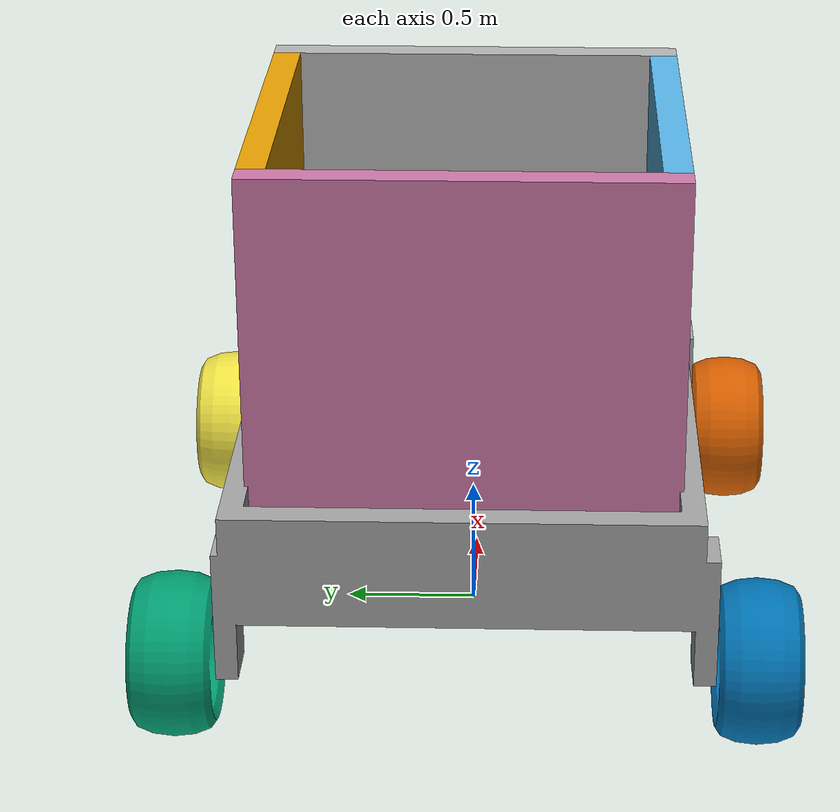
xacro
<?xml version="1.0"?>
<!-- created with Phobos 1.0.1 "Capricious Choutengan" -->
  <robot name="robot" xmlns:xacro="http://wiki.ros.org/xacro">

    <xacro:include filename="$(find robot_description)/urdf/control/ros2_control.urdf.xacro"/>
    <xacro:arg name="config_controllers" default="$(find robot_description)/config/wheels_controller.yaml"/>
    <xacro:arg name="update_rate" default="100"/>
    <xacro:ros2_control/>

    <xacro:include filename="$(find robot_description)/urdf/sensors/sensors.urdf.xacro"/>
    <xacro:arg name="prefix" default=""/>
    <xacro:arg name="my_robot" default=""/>

    <link name="base_footprint">
      <origin xyz="0 0 0" rpy="0 0 0"/>
    </link>

    <link name="base_link">
      <inertial>
        <origin xyz="0 0 0" rpy="0 0 0"/>
        <mass value="150.0"/>
        <inertia ixx="37.11703" ixy="10.21381" ixz="0" iyy="63.78499" iyz="0" izz="72.02697"/>
      </inertial>
      <visual name="Cube.000.000">
        <origin xyz="0 0 0" rpy="1.5708 0 0"/>
        <geometry>
          <mesh filename="file://$(find robot_description)/meshes/dae/Cube.025.dae" scale="1.0 1.0 0.81818"/>
        </geometry>
        <material name="Material"/>
      </visual>
      <collision name="Cube.000.000.000">
        <origin xyz="0 0 0" rpy="1.5708 0 0"/>
        <geometry>
          <mesh filename="file://$(find robot_description)/meshes/dae/Cube.027.dae" scale="1.0 1.0 0.81818"/>
        </geometry>
      </collision>
    </link>

    <link name="back_left_wheel">
      <inertial>
        <origin xyz="0 0 0" rpy="0 0 0"/>
        <mass value="2.0"/>
        <inertia ixx="0.01936" ixy="0" ixz="0" iyy="0.03745" iyz="0" izz="0.7564"/>
      </inertial>
      <visual name="Torus.000">
        <origin xyz="0 0 0" rpy="-3.14159 0 0"/>
        <geometry>
          <mesh filename="file://$(find robot_description)/meshes/dae/Torus.004.dae" scale="0.24 0.24 0.6"/>
        </geometry>
      </visual>
      <collision name="Torus.000.000">
        <origin xyz="0 0 0" rpy="-3.14159 0 0"/>
        <geometry>
          <mesh filename="file://$(find robot_description)/meshes/dae/Torus.005.dae" scale="0.6 0.6 0.6"/>
        </geometry>
      </collision>
    </link>

    <link name="front_left_wheel">
      <inertial>
        <origin xyz="0 0 0" rpy="0 0 0"/>
        <mass value="2.0"/>
        <inertia ixx="0.01936" ixy="0" ixz="0" iyy="0.03745" iyz="0" izz="0.7564"/>
      </inertial>
      <visual name="Torus.003">
        <origin xyz="0 0 0" rpy="0 0 0"/>
        <geometry>
          <mesh filename="file://$(find robot_description)/meshes/dae/Torus.003.dae" scale="0.24 0.24 0.6"/>
        </geometry>
      </visual>
      <collision name="Torus.003.000">
        <origin xyz="0 0 0" rpy="0 0 0"/>
        <geometry>
          <mesh filename="file://$(find robot_description)/meshes/dae/Torus.006.dae" scale="0.6 0.6 0.6"/>
        </geometry>
      </collision>
    </link>

    <link name="back_right_wheel">
      <inertial>
        <origin xyz="0 0 0" rpy="0 0 0"/>
        <mass value="2.0"/>
        <inertia ixx="0.01936" ixy="0" ixz="0" iyy="0.03745" iyz="0" izz="0.7564"/>
      </inertial>
      <visual name="Torus.001">
        <origin xyz="0 0 0" rpy="-3.14159 0 0"/>
        <geometry>
          <mesh filename="file://$(find robot_description)/meshes/dae/Torus.007.dae" scale="0.24 0.24 0.6"/>
        </geometry>
      </visual>
      <collision name="Torus.001.000">
        <origin xyz="0 0 0" rpy="-3.14159 0 0"/>
        <geometry>
          <mesh filename="file://$(find robot_description)/meshes/dae/Torus.008.dae" scale="0.6 0.6 0.6"/>
        </geometry>
      </collision>
    </link>

    <link name="front_right_wheel">
      <inertial>
        <origin xyz="0 0 0" rpy="0 0 0"/>
        <mass value="2.0"/>
        <inertia ixx="0.14197" ixy="0" ixz="0" iyy="0.23407" iyz="0" izz="0.14197"/>
      </inertial>
      <visual name="Torus.002">
        <origin xyz="0 0 0" rpy="-3.14159 0 0"/>
        <geometry>
          <mesh filename="file://$(find robot_description)/meshes/dae/Torus.002.dae" scale="0.24 0.24 0.6"/>
        </geometry>
      </visual>
      <collision name="Torus.002.000">
        <origin xyz="0 0 0" rpy="-3.14159 0 0"/>
        <geometry>
          <mesh filename="file://$(find robot_description)/meshes/dae/Torus.000.dae" scale="0.6 0.6 0.6"/>
        </geometry>
      </collision>
    </link>

    <link name="zback_box">
      <inertial>
        <origin xyz="0 0 0" rpy="0 0 0"/>
        <mass value="0.001"/>
        <inertia ixx="0.001" ixy="0" ixz="0" iyy="0.001" iyz="0" izz="0.001"/>
      </inertial>
      <visual name="Cube">
        <origin xyz="0 0 0" rpy="0 0 0"/>
        <geometry>
          <box size="0.1 1.5 1.35"/>
        </geometry>
      </visual>
      <collision name="Cube.000">
        <origin xyz="0 0 0" rpy="0 0 0"/>
        <geometry>
          <mesh filename="file://$(find robot_description)/meshes/dae/Cube.033.dae" scale="1.0 1.0 1.0"/>
        </geometry>
      </collision>
    </link>

    <link name="zfront_box">
      <inertial>
        <origin xyz="0 0 0" rpy="0 0 0"/>
        <mass value="0.001"/>
        <inertia ixx="0.001" ixy="0" ixz="0" iyy="0.001" iyz="0" izz="0.001"/>
      </inertial>
      <visual name="Cube.002">
        <origin xyz="0 0 0" rpy="0 0 0"/>
        <geometry>
          <box size="0.1 1.5 1.35"/>
        </geometry>
      </visual>
      <collision name="Cube.002.000">
        <origin xyz="0 0 0" rpy="0 0 0"/>
        <geometry>
          <mesh filename="file://$(find robot_description)/meshes/dae/Cube.034.dae" scale="1.0 1.0 1.0"/>
        </geometry>
      </collision>
    </link>

    <link name="zleft_box">
      <inertial>
        <origin xyz="0 0 0" rpy="0 0 0"/>
        <mass value="0.001"/>
        <inertia ixx="0.001" ixy="0" ixz="0" iyy="0.001" iyz="0" izz="0.001"/>
      </inertial>
      <visual name="Cube.003">
        <origin xyz="0 0 0" rpy="0 0 0"/>
        <geometry>
          <box size="0.1 1.3 1.35"/>
        </geometry>
      </visual>
      <collision name="Cube.003.000">
        <origin xyz="0 0 0" rpy="0 0 0"/>
        <geometry>
          <mesh filename="file://$(find robot_description)/meshes/dae/Cube.032.dae" scale="1.0 1.0 1.0"/>
        </geometry>
      </collision>
    </link>

    <link name="zright_box">
      <inertial>
        <origin xyz="0 0 0" rpy="0 0 0"/>
        <mass value="0.001"/>
        <inertia ixx="0.001" ixy="0" ixz="0" iyy="0.001" iyz="0" izz="0.001"/>
      </inertial>
      <visual name="Cube.004">
        <origin xyz="0 0 0" rpy="0 0 0"/>
        <geometry>
          <box size="0.1 1.3 1.35"/>
        </geometry>
      </visual>
      <collision name="Cube.004.000">
        <origin xyz="0 0 0" rpy="0 0 0"/>
        <geometry>
          <mesh filename="file://$(find robot_description)/meshes/dae/Cube.035.dae" scale="1.0 1.0 1.0"/>
        </geometry>
      </collision>
    </link>

    <joint name="base_joint" type="fixed">
      <origin xyz="0 0 0.8" rpy="0 0 0"/>
      <parent link="base_footprint"/>
      <child link="base_link"/>
    </joint>

    <joint name="zback_box" type="fixed">
      <origin xyz="-1.2 0 0.735" rpy="0 0 0"/>
      <parent link="base_link"/>
      <child link="zback_box"/>
    </joint>

    <joint name="zfront_box" type="fixed">
      <origin xyz="0.2 0 0.735" rpy="0 0 0"/>
      <parent link="base_link"/>
      <child link="zfront_box"/>
    </joint>

    <joint name="zleft_box" type="fixed">
      <origin xyz="-0.5 0.7 0.735" rpy="0 0 1.5708"/>
      <parent link="base_link"/>
      <child link="zleft_box"/>
    </joint>

    <joint name="zright_box" type="fixed">
      <origin xyz="-0.5 -0.7 0.735" rpy="0 0 1.5708"/>
      <parent link="base_link"/>
      <child link="zright_box"/>
    </joint>

    <joint name="back_left_wheel_joint" type="continuous">
      <origin xyz="-1.0 1.05 -0.5" rpy="-1.5708 0 0"/>
      <parent link="base_link"/>
      <child link="back_left_wheel"/>
      <axis xyz="0 0 1.0"/>
      <limit effort="5000" velocity="100"/>
    </joint>

    <joint name="front_left_wheel_joint" type="continuous">
      <origin xyz="1.0 1.05 -0.5" rpy="-1.5708 0 0"/>
      <parent link="base_link"/>
      <child link="front_left_wheel"/>
      <axis xyz="0 0 1.0"/>
      <limit effort="5000" velocity="100"/>
    </joint>

    <!-- RPY modified -->
    <joint name="back_right_wheel_joint" type="continuous">
      <origin xyz="-1.0 -1.05 -0.5" rpy="-1.5708 0 0"/>
      <parent link="base_link"/>
      <child link="back_right_wheel"/>
      <axis xyz="0 0 1.0"/>
      <limit effort="5000" velocity="100"/>
    </joint>

    <joint name="front_right_wheel_joint" type="continuous">
      <origin xyz="1.0 -1.05 -0.5" rpy="-1.5708 0 0"/>
      <parent link="base_link"/>
      <child link="front_right_wheel"/>
      <axis xyz="0 0 1.0"/>
      <limit effort="5000" velocity="100"/>
    </joint>
    <transmission name="back_left_wheel_joint_trans">
      <type>transmission_interface/SimpleTransmission</type>
      <joint name="back_left_wheel_joint">
        <hardwareInterface>hardware_interface/VelocityJointInterface</hardwareInterface>
      </joint>
      <actuator name="back_left_wheel_joint_motor">
        <mechanicalReduction>1</mechanicalReduction>
      </actuator>
    </transmission>
    <gazebo reference="back_left_wheel">
      <mu1>5</mu1>
      <mu2>5</mu2>
    </gazebo>

    <transmission name="front_left_wheel_joint_trans">
      <type>transmission_interface/SimpleTransmission</type>
      <joint name="front_left_wheel_joint">
        <hardwareInterface>hardware_interface/VelocityJointInterface</hardwareInterface>
      </joint>
      <actuator name="front_left_wheel_joint_motor">
        <mechanicalReduction>1</mechanicalReduction>
      </actuator>
    </transmission>
    <gazebo reference="front_left_wheel">
      <mu1>5</mu1>
      <mu2>5</mu2>
    </gazebo>

    <transmission name="back_right_wheel_joint_trans">
      <type>transmission_interface/SimpleTransmission</type>
      <joint name="back_right_wheel_joint">
        <hardwareInterface>hardware_interface/VelocityJointInterface</hardwareInterface>
      </joint>
      <actuator name="back_right_wheel_joint_motor">
        <mechanicalReduction>1</mechanicalReduction>
      </actuator>
    </transmission>
    <gazebo reference="back_right_wheel">
      <mu1>5</mu1>
      <mu2>5</mu2>
    </gazebo>

    <transmission name="front_right_wheel_joint_trans">
      <type>transmission_interface/SimpleTransmission</type>
      <joint name="front_right_wheel_joint">
        <hardwareInterface>hardware_interface/VelocityJointInterface</hardwareInterface>
      </joint>
      <actuator name="front_right_wheel_joint_motor">
        <mechanicalReduction>1</mechanicalReduction>
      </actuator>
    </transmission>
    <gazebo reference="front_right_wheel">
      <mu1>5</mu1>
      <mu2>5</mu2>
    </gazebo>

    <material name="Material">
      <color rgba="0.64 0.64 0.64 1.0"/>
    </material>

    <xacro:sensor_camera node_name="base_camera" node_namespace="$(arg my_robot)" frame_prefix="$(arg prefix)base_" parent="$(arg prefix)base_link" >
      <origin xyz="1.5 0.0 -0.01" rpy="0 0 0"/>
    </xacro:sensor_camera>
    <xacro:sensor_imu ns="$(arg my_robot)" prefix="$(arg prefix)imu" parent="$(arg prefix)base_link">
      <origin xyz="0.0 0.0 0.0" rpy="0 0 0"/>
    </xacro:sensor_imu>
</robot>

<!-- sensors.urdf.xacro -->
<robot name="sensors" xmlns:xacro="http://wiki.ros.org/xacro">
    <!-- ######## UTILS ######## -->
    <xacro:macro name="solid_cuboid_inertia" params="m w h d">
        <inertia ixx="${(m*(h*h+d*d))/12}" ixy="0" ixz="0" iyy="${(m*(w*w+d*d))/12}" iyz="0" izz="${(m*(w*w+h*h))/12}"/>
    </xacro:macro>
    <!-- ######### IMU ######### -->
    <xacro:macro name="sensor_imu" params="prefix ns:='' topic:='imu/data' parent *origin">
        <joint name="${prefix}_joint" type="fixed">
            <axis xyz="1 0 0"/>
            <!--origin xyz="0 0 0.2825"/-->
            <xacro:insert_block name="origin"/>
            <parent link="${parent}"/>
            <child link="${prefix}_link"/>
        </joint>
        <link name="${prefix}_link">
            <inertial>
                <origin xyz="0.0 0 0.01" rpy="0 0 0"/>
                <mass value="0.005"/>
                <xacro:solid_cuboid_inertia m="0.005" w="0.001" h="0.001" d="0.001"/>
            </inertial>
            <visual>
                <origin rpy="0 0 0" xyz="0 0 0"/>
                <geometry>
                    <box size="0.001 0.001 0.001"/>
                </geometry>
            </visual>
        </link>
        <gazebo reference="${prefix}_link">
            <gravity>true</gravity>
            <sensor name="${prefix}_imu_sensor" type="imu">
                <always_on>true</always_on>
                <update_rate>100</update_rate>
                <visualize>true</visualize>
                <topic>__default_topic__</topic>
                <plugin filename="libgazebo_ros_imu_sensor.so" name="${prefix}_imu_plugin">
                    <topicName>${topic}</topicName>
                    <bodyName>${prefix}_link</bodyName>
                    <updateRateHZ>100.0</updateRateHZ>
                    <gaussianNoise>0.0</gaussianNoise>
                    <xyzOffset>0 0 0</xyzOffset>
                    <rpyOffset>0 0 0</rpyOffset>
                    <frameName>${prefix}_link</frameName>
                </plugin>
                <pose>0 0 0 0 0 0</pose>
            </sensor>
        </gazebo>
    </xacro:macro>
    <!-- ####### CAMERA ####### -->
    <xacro:macro name="sensor_camera_generic" params="frame_prefix parent *origin node_name:=camera node_namespace:=${None} topic_prefix:=~/ horizontal_fov:=80 vertical_fov:=60 video_width:=1280 video_height:=720 video_fps:=30">
        <!-- node_namespace is used from node_name if not set -->
        <xacro:if value="${node_namespace == None}">
            <xacro:property name="node_namespace" value="${node_name}"/>
        </xacro:if>
        <joint name="${frame_prefix}camera_base_joint" type="fixed">
            <xacro:insert_block name="origin"/>
            <parent link="${parent}"/>
            <child link="${frame_prefix}camera_base_link"/>
        </joint>
        <link name="${frame_prefix}camera_base_link">
            <visual>
                <origin xyz="0 0 0" rpy="0 0 0"/>
                <geometry>
                    <box size="0.025 0.05 0.025"/>
                </geometry>
                <material name="light_grey">
                    <color rgba="0.35 0.35 0.35 1"/>
                </material>
            </visual>
            <collision>
                <origin xyz="0.0 0.0 0.0" rpy="0 0 0"/>
                <geometry>
                    <box size="0.025 0.05 0.025"/>
                </geometry>
            </collision>
            <inertial>
                <mass value="0.135"/>
                <origin xyz="0 0 0"/>
                <xacro:solid_cuboid_inertia m="0.135" w="0.033" h="0.175" d="0.03"/>
            </inertial>
        </link>
        <!-- Camera-->
        <joint name="${frame_prefix}camera_joint" type="fixed">
            <origin xyz="0.0 -0.06 0.0" rpy="0.0 0.0 0.0"/>
            <parent link="${frame_prefix}camera_base_link"/>
            <child link="${frame_prefix}camera_frame"/>
        </joint>
        <link name="${frame_prefix}camera_frame"/>
        <joint name="${frame_prefix}color_optical_joint" type="fixed">
            <origin xyz="0.0 0 0.0" rpy="${-pi/2} 0.0 ${-pi/2}"/>
            <parent link="${frame_prefix}camera_frame"/>
            <child link="${frame_prefix}camera_optical_frame"/>
        </joint>
        <link name="${frame_prefix}camera_optical_frame"/>
        <gazebo reference="${frame_prefix}camera_frame">
            <sensor name="${frame_prefix}sensor" type="camera">
            </sensor>
        </gazebo>
    </xacro:macro>
    <xacro:macro name="sensor_camera" params="frame_prefix parent *origin node_namespace:=cameras node_name topic_prefix:=~/">
        <xacro:sensor_camera_generic frame_prefix="${frame_prefix}" parent="${parent}" node_namespace="${node_namespace}" node_name="${node_name}" topic_prefix="${topic_prefix}" horizontal_fov="110" vertical_fov="70" video_width="1920" video_height="1080" video_fps="30">
            <xacro:insert_block name="origin"/>
        </xacro:sensor_camera_generic>
    </xacro:macro>
</robot>
